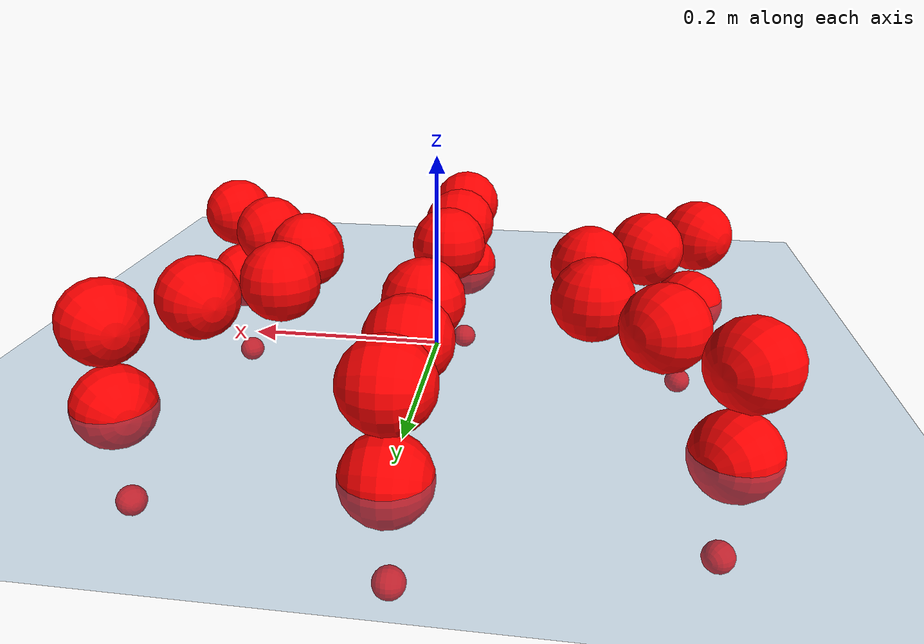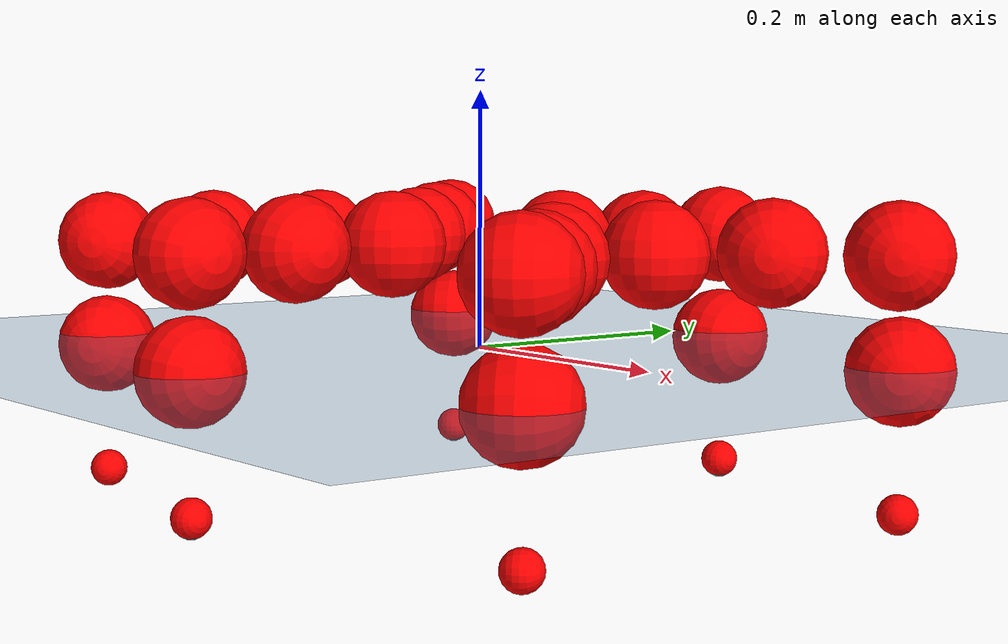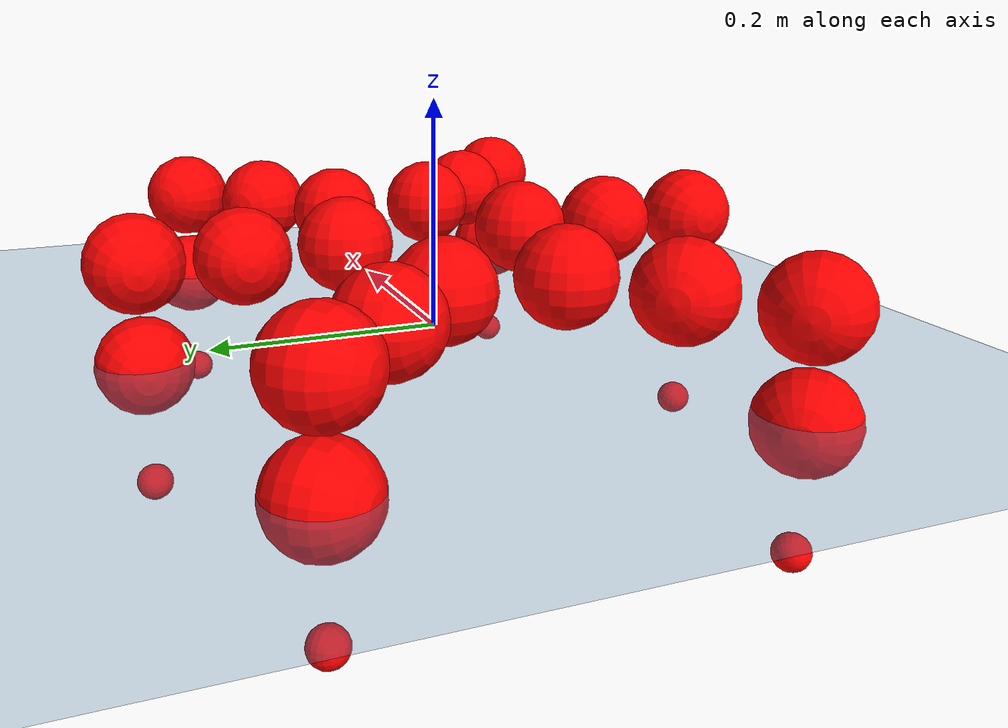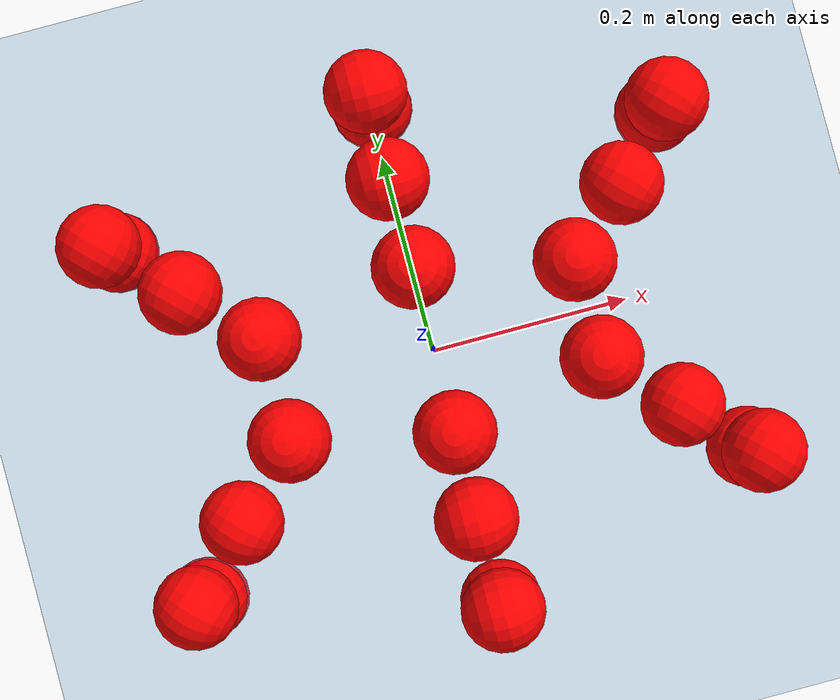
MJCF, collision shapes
<mujoco model="Golem">
  <compiler angle="radian" assetdir="assets" balanceinertia="true" inertiafromgeom="false"/>

  <option timestep="0.005" density="1.2" viscosity="2e-05"/>

  <size nkey="1"/>

  <visual>
    <quality shadowsize="8192"/>
    <map shadowclip="0.5"/>
  </visual>

  <default>
    <default class="/">
      <joint armature="0.01" damping="0.01" frictionloss="0.01"/>
      <geom contype="0" conaffinity="0" group="1" solref="-1000 -80"/>
      <site size="0.01 0.005 0.005" group="5"/>
      <general forcelimited="true" biastype="affine" gainprm="25" biasprm="0 -25 -0.5"/>
      <default class="visual">
        <geom type="mesh" group="2"/>
      </default>
      <default class="collision">
        <geom group="3"/>
      </default>
      <default class="foot">
        <geom size="0.01 0 0" condim="6" group="4" priority="1" solimp="0.015 1 0.01"/>
      </default>
      <default class="reward_collision_sphere">
        <geom group="5" rgba="1 0 0 1"/>
      </default>
    </default>
  </default>

  <asset>
    <texture type="skybox" colorspace="auto" name="//unnamed_texture_0" builtin="gradient" rgb1="0.95 0.95 0.95" rgb2="0.95 0.95 0.95" width="100" height="600"/>
    <texture type="2d" colorspace="auto" name="texplane" builtin="checker" rgb1="0.345 0.575 0.748" rgb2="0.345 0.575 0.748" markrgb="1 1 1" width="512" height="512"/>
    <material name="MatPlane" class="/" texture="texplane" texuniform="true" texrepeat="2 2" specular="0.9"/>
    <mesh name="body" class="/" file="body.stl" scale="0.001 0.001 0.001"/>
    <mesh name="coxa" class="/" file="coxa.stl" scale="0.001 0.001 0.001"/>
    <mesh name="femur" class="/" file="femur.stl" scale="0.001 0.001 0.001"/>
    <mesh name="tibia" class="/" file="tibia.stl" scale="0.001 0.001 0.001"/>
    <mesh name="tarsus" class="/" file="tarsus.stl" scale="0.001 0.001 0.001"/>
  </asset>

  <worldbody>
    <geom name="floor" class="/" size="100 100 0.125" type="plane" group="0" material="MatPlane"/>
    <light name="toplight_shadow" class="/" pos="0 0 5" dir="0.0990148 0.0990148 -0.990148" type="directional" ambient="0.04 0.04 0.04" diffuse="0.55 0.55 0.55" specular="0.12 0.12 0.12"/>
    <light name="toplight_fill" class="/" pos="0 0 5" dir="0.0990148 0.0990148 -0.990148" type="directional" castshadow="false" ambient="0.04 0.04 0.04" diffuse="0.3 0.3 0.3" specular="0.08 0.08 0.08"/>
    <body name="trunk" pos="-0.00125749 -0.00070607 -0.000487325" quat="1 -0.000166048 -0.000520224 -9.94152e-05">
      <inertial pos="-0.00119195 -0.00219474 -0.00283967" quat="0.999932 -0.00289852 -0.0112895 0.000739348" mass="3.91441" diaginertia="0.00936634 0.00414799 0.0291948"/>
      <joint name="//unnamed_joint_0" type="free"/>
      <geom name="//unnamed_geom_1" class="/" pos="0 0 0.0788276" quat="1 0 0 0" type="mesh" rgba="0.9 0.9 0.9 1" mesh="body"/>
      <site name="imu" class="/" pos="0.132238 0.0015982 0.110463" size="0.0101602"/>
      <camera name="track" class="/" pos="0 -1.67247 0" quat="0.707107 0.707107 0 0" mode="trackcom"/>
      <camera name="ego_camera" class="/" pos="0.127417 0 0.123168" quat="-0.5 -0.5 0.5 0.5"/>
      <body name="coxa_RR" pos="-0.17475 -0.0695448 0.0799" quat="0.38266 4.60122e-06 1.14576e-05 -0.923889">
        <inertial pos="0.0019152 0.00274603 0.00282094" quat="0.999938 0.00340038 -0.00965061 -0.004363" mass="0.204125" diaginertia="0.00894646 0.00420191 0.0272259"/>
        <joint name="coxa_joint_RR" class="/" pos="0 0 0" axis="0.00128721 -0.00545497 -0.999984" range="-3.13644 3.18129" armature="0.00921751" damping="0.0036158" frictionloss="0.0102065"/>
        <geom name="//unnamed_geom_2" class="/" type="mesh" rgba="0.2 0.2 0.2 1" mesh="coxa"/>
        <geom name="//unnamed_geom_3" class="reward_collision_sphere" size="0.0406406" pos="-0.0294038 0 0"/>
        <body name="femur_RR" pos="0.0607182 6.62884e-05 -0.000871792" quat="0.500269 -0.499396 0.499478 0.500855">
          <inertial pos="-0.000594029 0.0026034 0.00109076" quat="0.999999 0.0010858 0.00091939 -0.000957327" mass="0.202296" diaginertia="0.00882634 0.0039747 0.0281133"/>
          <joint name="femur_joint_RR" class="/" pos="0 0 0" axis="-0.00555122 -0.000802212 -0.999984" stiffness="0.00105243" range="-3.09447 3.09949" armature="0.0101892" damping="0.0325309" frictionloss="0.0115537"/>
          <geom name="//unnamed_geom_4" class="/" type="mesh" rgba="0.9 0.9 0.9 1" mesh="femur"/>
          <geom name="//unnamed_geom_5" class="reward_collision_sphere" size="0.0406406"/>
          <body name="tibia_RR" pos="0.00188635 -0.0915117 0.00256462" quat="-0.000737325 0.999999 -0.000984096 0.000276181">
            <inertial pos="-0.00116402 0.000838921 -0.000445226" quat="0.999907 -0.0113315 0.00356771 -0.00667204" mass="0.201668" diaginertia="0.00924792 0.00404192 0.0283444"/>
            <joint name="tibia_joint_RR" class="/" pos="0 0 0" axis="-0.00267678 0.000241253 0.999996" range="-3.19446 3.15897" armature="0.010241" damping="0.00952715" frictionloss="0.00966564"/>
            <geom name="//unnamed_geom_6" class="/" type="mesh" rgba="0.2 0.2 0.2 1" mesh="tibia"/>
            <geom name="//unnamed_geom_7" class="reward_collision_sphere" size="0.0406406"/>
            <body name="tarsus_RR" pos="0.0869069 0.000915078 -0.000679531" quat="1 -0.0008529 0.000388089 -0.000336968">
              <inertial pos="0.0594233 0.000204701 -0.00271141" quat="0.497452 0.501694 0.501798 0.499043" mass="0.207012" diaginertia="0.0087605 0.00405861 0.0278623"/>
              <joint name="tarsus_joint_RR" class="/" pos="0 0 0" axis="-0.016415 0.00977746 0.999817" range="-3.14924 3.13989" armature="0.0106148" damping="0.0470006" frictionloss="0.00979662"/>
              <geom name="//unnamed_geom_8" class="/" type="mesh" rgba="0.9 0.9 0.9 1" mesh="tarsus"/>
              <geom name="foot_1" class="foot" size="0.00930378" pos="0.109774 0 0" quat="0 -0.707107 0 0.707107"/>
              <geom name="//unnamed_geom_10" class="reward_collision_sphere" size="0.0406406"/>
              <geom name="//unnamed_geom_11" class="reward_collision_sphere" size="0.0152402" pos="0.105364 0 0"/>
              <site name="foot_1" class="foot" pos="0.109774 0 0" quat="0 -0.707107 0 0.707107" size="0.0101602"/>
            </body>
          </body>
        </body>
      </body>
      <body name="coxa_RM" pos="0.000523056 -0.110886 0.0842774" quat="0.707774 -0.000630932 -0.000318552 -0.706438">
        <inertial pos="0.00040608 -0.000364965 -0.00180989" quat="0.999988 -0.00387792 0.00274164 -0.000926503" mass="0.208087" diaginertia="0.00867182 0.00418395 0.0277894"/>
        <joint name="coxa_joint_RM" class="/" pos="0 0 0" axis="-0.00154333 0.000151577 -0.999999" stiffness="0.00348695" range="-3.12304 3.14592" armature="0.010888" damping="0.0183288" frictionloss="0.0106539"/>
        <geom name="//unnamed_geom_12" class="/" type="mesh" rgba="0.2 0.2 0.2 1" mesh="coxa"/>
        <geom name="//unnamed_geom_13" class="reward_collision_sphere" size="0.0406406" pos="-0.0294038 0 0"/>
        <body name="femur_RM" pos="0.0552702 -0.00177858 -0.000236681" quat="0.500742 -0.500379 0.499681 0.499196">
          <inertial pos="0.000444183 -0.00246033 0.00271266" quat="0.999968 0.00306015 0.0071566 -0.00209303" mass="0.222664" diaginertia="0.0089869 0.0041657 0.0283109"/>
          <joint name="femur_joint_RM" class="/" pos="0 0 0" axis="-0.000274703 0.0019762 -0.999998" range="-3.10253 3.089" armature="0.00995818" damping="0.0249457" frictionloss="0.010219"/>
          <geom name="//unnamed_geom_14" class="/" type="mesh" rgba="0.9 0.9 0.9 1" mesh="femur"/>
          <geom name="//unnamed_geom_15" class="reward_collision_sphere" size="0.0406406"/>
          <body name="tibia_RM" pos="0.000187361 -0.0895919 0.00219267" quat="0.000387373 0.999999 -0.000108331 0.000951119">
            <inertial pos="-0.00152839 0.000692874 -0.00240421" quat="0.999988 0.000961552 -0.00481448 -0.000779742" mass="0.211841" diaginertia="0.00909259 0.00408762 0.0288878"/>
            <joint name="tibia_joint_RM" class="/" pos="0 0 0" axis="-0.00175495 -0.0122073 0.999924" stiffness="0.00912015" range="-3.14326 3.15038" armature="0.00955751" damping="0.00399877" frictionloss="0.0089134"/>
            <geom name="//unnamed_geom_16" class="/" type="mesh" rgba="0.2 0.2 0.2 1" mesh="tibia"/>
            <geom name="//unnamed_geom_17" class="reward_collision_sphere" size="0.0406406"/>
            <body name="tarsus_RM" pos="0.0845741 0.000946441 -0.000784957" quat="1 7.36667e-05 -0.000142398 0.000188681">
              <inertial pos="0.0600549 0.000334527 0.000597403" quat="0.507805 0.48903 0.500231 0.502745" mass="0.210068" diaginertia="0.00907426 0.0040967 0.0300407"/>
              <joint name="tarsus_joint_RM" class="/" pos="0 0 0" axis="0.00151781 0.00027594 0.999999" stiffness="0.00293043" range="-3.16952 3.09946" armature="0.00894263" damping="0.00979247" frictionloss="0.0111659"/>
              <geom name="//unnamed_geom_18" class="/" type="mesh" rgba="0.9 0.9 0.9 1" mesh="tarsus"/>
              <geom name="foot_2" class="foot" size="0.0112191" pos="0.109774 0 0" quat="0 -0.707107 0 0.707107"/>
              <geom name="//unnamed_geom_20" class="reward_collision_sphere" size="0.0406406"/>
              <geom name="//unnamed_geom_21" class="reward_collision_sphere" size="0.0152402" pos="0.105364 0 0"/>
              <site name="foot_2" class="foot" pos="0.109774 0 0" quat="0 -0.707107 0 0.707107" size="0.0101602"/>
            </body>
          </body>
        </body>
      </body>
      <body name="coxa_RF" pos="0.175035 -0.0692138 0.080477" quat="0.923878 -8.40143e-05 -0.000191063 -0.382688">
        <inertial pos="-0.000631463 -0.00088973 0.000176665" quat="0.999991 0.000722933 -0.00377377 -0.00190246" mass="0.213601" diaginertia="0.008791 0.00398923 0.0279952"/>
        <joint name="coxa_joint_RF" class="/" pos="0 0 0" axis="-0.0115233 -0.0122466 -0.999859" stiffness="0.0180483" range="-3.08571 3.15717" armature="0.00863441" damping="0.016382" frictionloss="0.0106206"/>
        <geom name="//unnamed_geom_22" class="/" type="mesh" rgba="0.2 0.2 0.2 1" mesh="coxa"/>
        <geom name="//unnamed_geom_23" class="reward_collision_sphere" size="0.0406406" pos="-0.0294038 0 0"/>
        <body name="femur_RF" pos="0.0601067 -0.000732909 -0.000737767" quat="0.499973 -0.499963 0.500113 0.499951">
          <inertial pos="-0.000350785 -0.00229813 -0.00153536" quat="1 0.00061167 -0.000377445 -0.000480831" mass="0.21843" diaginertia="0.00915428 0.00415831 0.0291688"/>
          <joint name="femur_joint_RF" class="/" pos="0 0 0" axis="0.00715605 -0.00599365 -0.999956" range="-3.14775 3.09222" armature="0.00909866" damping="0.00890399" frictionloss="0.0106679"/>
          <geom name="//unnamed_geom_24" class="/" type="mesh" rgba="0.9 0.9 0.9 1" mesh="femur"/>
          <geom name="//unnamed_geom_25" class="reward_collision_sphere" size="0.0406406"/>
          <body name="tibia_RF" pos="-0.00330256 -0.0879001 0.000552053" quat="0.000505974 0.999999 0.000228754 0.000973437">
            <inertial pos="0.00178149 -0.000408475 0.000973993" quat="0.999992 0.0038415 -0.000868914 -0.000500811" mass="0.202693" diaginertia="0.00911614 0.00399849 0.0272882"/>
            <joint name="tibia_joint_RF" class="/" pos="0 0 0" axis="-0.00163481 0.00365457 0.999992" range="-3.13939 3.12097" armature="0.0106893" damping="0" frictionloss="0.0115588"/>
            <geom name="//unnamed_geom_26" class="/" type="mesh" rgba="0.2 0.2 0.2 1" mesh="tibia"/>
            <geom name="//unnamed_geom_27" class="reward_collision_sphere" size="0.0406406"/>
            <body name="tarsus_RF" pos="0.0833881 -0.000580016 -0.00068101" quat="1 -0.000388042 -0.000541223 -0.000584423">
              <inertial pos="0.0571217 1.15286e-05 0.000324163" quat="0.498538 0.507433 0.498818 0.495129" mass="0.205681" diaginertia="0.00874715 0.00400302 0.0277078"/>
              <joint name="tarsus_joint_RF" class="/" pos="0 0 0" axis="0.00673797 -0.0118106 0.999908" stiffness="0.000833493" range="-3.13716 3.14461" armature="0.0100921" damping="0.00867388" frictionloss="0.0111836"/>
              <geom name="//unnamed_geom_28" class="/" type="mesh" rgba="0.9 0.9 0.9 1" mesh="tarsus"/>
              <geom name="foot_3" class="foot" size="0.0100516" pos="0.109774 0 0" quat="0 -0.707107 0 0.707107"/>
              <geom name="//unnamed_geom_30" class="reward_collision_sphere" size="0.0406406"/>
              <geom name="//unnamed_geom_31" class="reward_collision_sphere" size="0.0152402" pos="0.105364 0 0"/>
              <site name="foot_3" class="foot" pos="0.109774 0 0" quat="0 -0.707107 0 0.707107" size="0.0101602"/>
            </body>
          </body>
        </body>
      </body>
      <body name="coxa_LR" pos="-0.17763 0.0729139 0.0795907" quat="0.382586 -0.000111427 1.02209e-05 0.92392">
        <inertial pos="0.000317174 0.000561413 0.00318334" quat="0.999989 -0.00286491 0.00304246 -0.00229328" mass="0.20054" diaginertia="0.00892869 0.00409974 0.0286739"/>
        <joint name="coxa_joint_LR" class="/" pos="0 0 0" axis="4.99604e-05 -0.000110893 -1" range="-3.13056 3.14326" armature="0.00884826" damping="0.0154678" frictionloss="0.00967339"/>
        <geom name="//unnamed_geom_32" class="/" type="mesh" rgba="0.2 0.2 0.2 1" mesh="coxa"/>
        <geom name="//unnamed_geom_33" class="reward_collision_sphere" size="0.0406406" pos="-0.0294038 0 0"/>
        <body name="femur_LR" pos="0.0580544 -0.000467398 0.00133643" quat="0.500774 -0.499581 0.498964 0.500678">
          <inertial pos="-0.000723433 -0.00106118 0.00241949" quat="0.999906 -0.00954037 -0.00720879 0.00669498" mass="0.217267" diaginertia="0.00933767 0.00397391 0.0290997"/>
          <joint name="femur_joint_LR" class="/" pos="0 0 0" axis="0.00348305 0.0109096 0.999934" range="-3.13147 3.13302" armature="0.0102487" damping="0.0111964" frictionloss="0.00881218"/>
          <geom name="//unnamed_geom_34" class="/" type="mesh" rgba="0.9 0.9 0.9 1" mesh="femur"/>
          <geom name="//unnamed_geom_35" class="reward_collision_sphere" size="0.0406406"/>
          <body name="tibia_LR" pos="0.000581996 -0.0898001 0.000577098" quat="-0.00092466 0.999999 0.000161366 -0.000822633">
            <inertial pos="0.00193003 -0.00258108 0.000852577" quat="0.999979 -0.000385715 0.00636168 -0.000998452" mass="0.209995" diaginertia="0.00879471 0.00402605 0.0272914"/>
            <joint name="tibia_joint_LR" class="/" pos="0 0 0" axis="0.00122856 -0.00232775 -0.999997" range="-3.15549 3.15578" armature="0.00882938" damping="0.015109" frictionloss="0.00875585"/>
            <geom name="//unnamed_geom_36" class="/" type="mesh" rgba="0.2 0.2 0.2 1" mesh="tibia"/>
            <geom name="//unnamed_geom_37" class="reward_collision_sphere" size="0.0406406"/>
            <body name="tarsus_LR" pos="0.0853785 -0.001372 0.00262475" quat="1 -0.000194351 0.00015235 -0.000359347">
              <inertial pos="0.0607536 -0.000463592 0.00263349" quat="0.49782 0.500598 0.501055 0.500521" mass="0.202046" diaginertia="0.00875249 0.00415833 0.0283308"/>
              <joint name="tarsus_joint_LR" class="/" pos="0 0 0" axis="-0.00359124 -0.00266104 -0.99999" stiffness="0.0106785" range="-3.17007 3.12272" armature="0.00918594" damping="0.0265007" frictionloss="0.0106454"/>
              <geom name="//unnamed_geom_38" class="/" type="mesh" rgba="0.9 0.9 0.9 1" mesh="tarsus"/>
              <geom name="foot_4" class="foot" size="0.0112672" pos="0.109774 0 0" quat="0.707107 0 -0.707107 0"/>
              <geom name="//unnamed_geom_40" class="reward_collision_sphere" size="0.0406406"/>
              <geom name="//unnamed_geom_41" class="reward_collision_sphere" size="0.0152402" pos="0.105364 0 0"/>
              <site name="foot_4" class="foot" pos="0.109774 0 0" quat="0.707107 0 -0.707107 0" size="0.0101602"/>
            </body>
          </body>
        </body>
      </body>
      <body name="coxa_LM" pos="0.00252271 0.110131 0.0810451" quat="0.707352 -0.00101242 -0.000993164 0.70686">
        <inertial pos="-0.000614386 -0.00166419 0.0029595" quat="1 -0.000285524 -0.000437091 -2.51991e-05" mass="0.208571" diaginertia="0.00930278 0.00407347 0.0280696"/>
        <joint name="coxa_joint_LM" class="/" pos="0 0 0" axis="0.00340724 0.0131971 -0.999907" range="-3.09962 3.09784" armature="0.0102991" damping="0.0224614" frictionloss="0.0112357"/>
        <geom name="//unnamed_geom_42" class="/" type="mesh" rgba="0.2 0.2 0.2 1" mesh="coxa"/>
        <geom name="//unnamed_geom_43" class="reward_collision_sphere" size="0.0406406" pos="-0.0294038 0 0"/>
        <body name="femur_LM" pos="0.0584699 0.00182466 -0.00210777" quat="0.499494 -0.500351 0.500167 0.499988">
          <inertial pos="-0.00160116 0.00197863 -0.00190869" quat="0.999991 -0.00239642 -0.00359083 0.000309367" mass="0.215949" diaginertia="0.00943322 0.00413226 0.0300997"/>
          <joint name="femur_joint_LM" class="/" pos="0 0 0" axis="-0.0024358 0.0144588 0.999892" stiffness="0.00605043" range="-3.08422 3.14028" armature="0.0110197" damping="0.00415127" frictionloss="0.01014"/>
          <geom name="//unnamed_geom_44" class="/" type="mesh" rgba="0.9 0.9 0.9 1" mesh="femur"/>
          <geom name="//unnamed_geom_45" class="reward_collision_sphere" size="0.0406406"/>
          <body name="tibia_LM" pos="-0.00130695 -0.0863186 -0.00102086" quat="-4.73523e-06 1 3.60192e-05 1.27326e-05">
            <inertial pos="0.00285419 -0.000120305 0.00261384" quat="0.999905 0.00960973 -0.00920714 -0.00356334" mass="0.2136" diaginertia="0.00895101 0.00400305 0.027156"/>
            <joint name="tibia_joint_LM" class="/" pos="0 0 0" axis="-0.000424836 0.0105969 -0.999944" range="-3.19434 3.16246" armature="0.00996736" damping="0.0069424" frictionloss="0.00914339"/>
            <geom name="//unnamed_geom_46" class="/" type="mesh" rgba="0.2 0.2 0.2 1" mesh="tibia"/>
            <geom name="//unnamed_geom_47" class="reward_collision_sphere" size="0.0406406"/>
            <body name="tarsus_LM" pos="0.0871151 -0.00173445 0.00261151" quat="1 -4.50527e-05 -3.6091e-05 1.8723e-05">
              <inertial pos="0.0560513 0.000538957 -0.000275625" quat="0.505072 0.498666 0.505253 0.49087" mass="0.204571" diaginertia="0.00930904 0.00410951 0.0282681"/>
              <joint name="tarsus_joint_LM" class="/" pos="0 0 0" axis="-0.0126174 -0.00436335 -0.999911" range="-3.14109 3.10808" armature="0.01072" damping="0.00140842" frictionloss="0.0102583"/>
              <geom name="//unnamed_geom_48" class="/" type="mesh" rgba="0.9 0.9 0.9 1" mesh="tarsus"/>
              <geom name="foot_5" class="foot" size="0.0113625" pos="0.109774 0 0" quat="0.707107 0 -0.707107 0"/>
              <geom name="//unnamed_geom_50" class="reward_collision_sphere" size="0.0406406"/>
              <geom name="//unnamed_geom_51" class="reward_collision_sphere" size="0.0152402" pos="0.105364 0 0"/>
              <site name="foot_5" class="foot" pos="0.109774 0 0" quat="0.707107 0 -0.707107 0" size="0.0101602"/>
            </body>
          </body>
        </body>
      </body>
      <body name="coxa_LF" pos="0.174623 0.0686374 0.0793119" quat="0.923969 -0.000135296 -0.000223686 0.382468">
        <inertial pos="0.000224601 0.0024964 0.000341994" quat="1 -0.000807865 -0.000135709 -0.000318303" mass="0.206634" diaginertia="0.00878005 0.0040216 0.0280281"/>
        <joint name="coxa_joint_LF" class="/" pos="0 0 0" axis="-0.0023724 0.00649046 -0.999976" range="-3.13512 3.08535" armature="0.0114147" damping="0.00957883" frictionloss="0.0100289"/>
        <geom name="//unnamed_geom_52" class="/" type="mesh" rgba="0.2 0.2 0.2 1" mesh="coxa"/>
        <geom name="//unnamed_geom_53" class="reward_collision_sphere" size="0.0406406" pos="-0.0294038 0 0"/>
        <body name="femur_LF" pos="0.056172 -0.00181685 0.00201976" quat="0.499422 -0.499335 0.50124 0.5">
          <inertial pos="-0.0001651 0.00246661 -0.0026451" quat="0.999991 -0.000740091 -0.00384684 -0.00163587" mass="0.206859" diaginertia="0.00877348 0.00392744 0.0280972"/>
          <joint name="femur_joint_LF" class="/" pos="0 0 0" axis="0.0016335 -0.0016111 0.999997" stiffness="0.00698984" range="-3.13243 3.14839" armature="0.00986228" damping="0.00508124" frictionloss="0.0112497"/>
          <geom name="//unnamed_geom_54" class="/" type="mesh" rgba="0.9 0.9 0.9 1" mesh="femur"/>
          <geom name="//unnamed_geom_55" class="reward_collision_sphere" size="0.0406406"/>
          <body name="tibia_LF" pos="0.00102785 -0.0914058 0.00318954" quat="-0.000586937 0.999999 0.00106347 8.55804e-05">
            <inertial pos="0.00276324 0.00271838 0.00145659" quat="0.999996 -0.000756361 0.00252661 -0.00117302" mass="0.211612" diaginertia="0.00904488 0.0041793 0.0296753"/>
            <joint name="tibia_joint_LF" class="/" pos="0 0 0" axis="0.000705041 -0.000420747 -1" range="-3.16104 3.0919" armature="0.0113071" damping="0.014785" frictionloss="0.00991575"/>
            <geom name="//unnamed_geom_56" class="/" type="mesh" rgba="0.2 0.2 0.2 1" mesh="tibia"/>
            <geom name="//unnamed_geom_57" class="reward_collision_sphere" size="0.0406406"/>
            <body name="tarsus_LF" pos="0.0846364 0.00212076 -0.000702133" quat="0.999999 -0.000695655 0.000477901 0.000571505">
              <inertial pos="0.0595968 0.00035619 -0.000106211" quat="0.500643 0.497921 0.500067 0.501363" mass="0.206686" diaginertia="0.00865525 0.00403161 0.027444"/>
              <joint name="tarsus_joint_LF" class="/" pos="0 0 0" axis="1.14386e-05 -0.000975858 -1" range="-3.13786 3.15413" armature="0.0105369" damping="0" frictionloss="0.0106387"/>
              <geom name="//unnamed_geom_58" class="/" type="mesh" rgba="0.9 0.9 0.9 1" mesh="tarsus"/>
              <geom name="foot_6" class="foot" size="0.00988046" pos="0.109774 0 0" quat="0.707107 0 -0.707107 0"/>
              <geom name="//unnamed_geom_60" class="reward_collision_sphere" size="0.0406406"/>
              <geom name="//unnamed_geom_61" class="reward_collision_sphere" size="0.0152402" pos="0.105364 0 0"/>
              <site name="foot_6" class="foot" pos="0.109774 0 0" quat="0.707107 0 -0.707107 0" size="0.0101602"/>
            </body>
          </body>
        </body>
      </body>
    </body>
  </worldbody>

  <contact>
    <pair class="/" geom1="floor" geom2="foot_1" name="//unnamed_contact_0"/>
    <pair class="/" geom1="floor" geom2="foot_2" name="//unnamed_contact_1"/>
    <pair class="/" geom1="floor" geom2="foot_3" name="//unnamed_contact_2"/>
    <pair class="/" geom1="floor" geom2="foot_4" name="//unnamed_contact_3"/>
    <pair class="/" geom1="floor" geom2="foot_5" name="//unnamed_contact_4"/>
    <pair class="/" geom1="floor" geom2="foot_6" name="//unnamed_contact_5"/>
  </contact>

  <actuator>
    <general name="coxa_joint_RR" class="/" joint="coxa_joint_RR" forcerange="-7.52244 7.52244" gainprm="25.4984" biasprm="0 -25.4984 -0.487686"/>
    <general name="femur_joint_RR" class="/" joint="femur_joint_RR" forcerange="-7.48721 7.48721" gainprm="25.4984" biasprm="0 -25.4984 -0.487686"/>
    <general name="tibia_joint_RR" class="/" joint="tibia_joint_RR" forcerange="-7.23129 7.23129" gainprm="25.4984" biasprm="0 -25.4984 -0.487686"/>
    <general name="tarsus_joint_RR" class="/" joint="tarsus_joint_RR" forcerange="-6.71729 6.71729" gainprm="25.4984" biasprm="0 -25.4984 -0.487686"/>
    <general name="coxa_joint_RM" class="/" joint="coxa_joint_RM" forcerange="-6.6749 6.6749" gainprm="25.4984" biasprm="0 -25.4984 -0.487686"/>
    <general name="femur_joint_RM" class="/" joint="femur_joint_RM" forcerange="-7.18356 7.18356" gainprm="25.4984" biasprm="0 -25.4984 -0.487686"/>
    <general name="tibia_joint_RM" class="/" joint="tibia_joint_RM" forcerange="-7.37338 7.37338" gainprm="25.4984" biasprm="0 -25.4984 -0.487686"/>
    <general name="tarsus_joint_RM" class="/" joint="tarsus_joint_RM" forcerange="-8.1858 8.1858" gainprm="25.4984" biasprm="0 -25.4984 -0.487686"/>
    <general name="coxa_joint_RF" class="/" joint="coxa_joint_RF" forcerange="-7.28979 7.28979" gainprm="25.4984" biasprm="0 -25.4984 -0.487686"/>
    <general name="femur_joint_RF" class="/" joint="femur_joint_RF" forcerange="-7.09868 7.09868" gainprm="25.4984" biasprm="0 -25.4984 -0.487686"/>
    <general name="tibia_joint_RF" class="/" joint="tibia_joint_RF" forcerange="-7.8081 7.8081" gainprm="25.4984" biasprm="0 -25.4984 -0.487686"/>
    <general name="tarsus_joint_RF" class="/" joint="tarsus_joint_RF" forcerange="-8.17217 8.17217" gainprm="25.4984" biasprm="0 -25.4984 -0.487686"/>
    <general name="coxa_joint_LR" class="/" joint="coxa_joint_LR" forcerange="-7.2314 7.2314" gainprm="25.4984" biasprm="0 -25.4984 -0.487686"/>
    <general name="femur_joint_LR" class="/" joint="femur_joint_LR" forcerange="-6.75646 6.75646" gainprm="25.4984" biasprm="0 -25.4984 -0.487686"/>
    <general name="tibia_joint_LR" class="/" joint="tibia_joint_LR" forcerange="-7.68429 7.68429" gainprm="25.4984" biasprm="0 -25.4984 -0.487686"/>
    <general name="tarsus_joint_LR" class="/" joint="tarsus_joint_LR" forcerange="-6.98612 6.98612" gainprm="25.4984" biasprm="0 -25.4984 -0.487686"/>
    <general name="coxa_joint_LM" class="/" joint="coxa_joint_LM" forcerange="-8.11746 8.11746" gainprm="25.4984" biasprm="0 -25.4984 -0.487686"/>
    <general name="femur_joint_LM" class="/" joint="femur_joint_LM" forcerange="-7.26295 7.26295" gainprm="25.4984" biasprm="0 -25.4984 -0.487686"/>
    <general name="tibia_joint_LM" class="/" joint="tibia_joint_LM" forcerange="-7.28566 7.28566" gainprm="25.4984" biasprm="0 -25.4984 -0.487686"/>
    <general name="tarsus_joint_LM" class="/" joint="tarsus_joint_LM" forcerange="-6.64862 6.64862" gainprm="25.4984" biasprm="0 -25.4984 -0.487686"/>
    <general name="coxa_joint_LF" class="/" joint="coxa_joint_LF" forcerange="-7.32682 7.32682" gainprm="25.4984" biasprm="0 -25.4984 -0.487686"/>
    <general name="femur_joint_LF" class="/" joint="femur_joint_LF" forcerange="-7.38554 7.38554" gainprm="25.4984" biasprm="0 -25.4984 -0.487686"/>
    <general name="tibia_joint_LF" class="/" joint="tibia_joint_LF" forcerange="-8.18285 8.18285" gainprm="25.4984" biasprm="0 -25.4984 -0.487686"/>
    <general name="tarsus_joint_LF" class="/" joint="tarsus_joint_LF" forcerange="-7.31752 7.31752" gainprm="25.4984" biasprm="0 -25.4984 -0.487686"/>
  </actuator>

  <sensor>
    <gyro site="imu" name="imu_angular_velocity"/>
    <velocimeter site="imu" name="imu_linear_velocity"/>
    <framelinvel objtype="site" objname="foot_1" name="foot_1_global_linear_velocity"/>
    <framelinvel objtype="site" objname="foot_2" name="foot_2_global_linear_velocity"/>
    <framelinvel objtype="site" objname="foot_3" name="foot_3_global_linear_velocity"/>
    <framelinvel objtype="site" objname="foot_4" name="foot_4_global_linear_velocity"/>
    <framelinvel objtype="site" objname="foot_5" name="foot_5_global_linear_velocity"/>
    <framelinvel objtype="site" objname="foot_6" name="foot_6_global_linear_velocity"/>
  </sensor>

  <keyframe>
    <key name="home" qpos="0 0 0.1457 1 0 0 0 0 0 0 0 0 0 0 0 0 0 0 0 0 0 0 0 0 0 0 0 0 0 0 0"/>
  </keyframe>
</mujoco>
